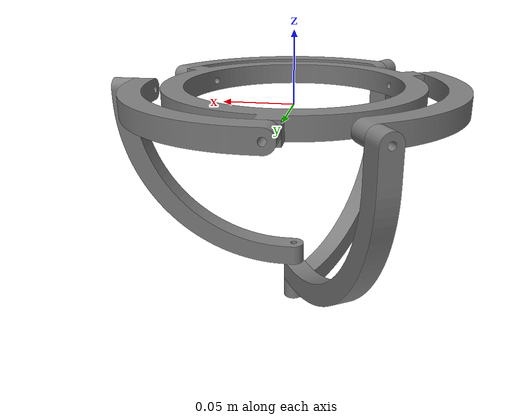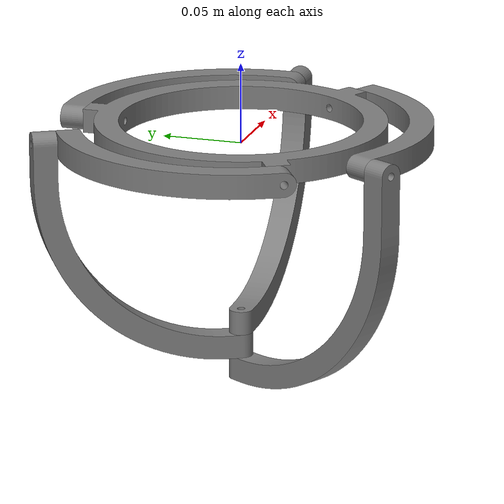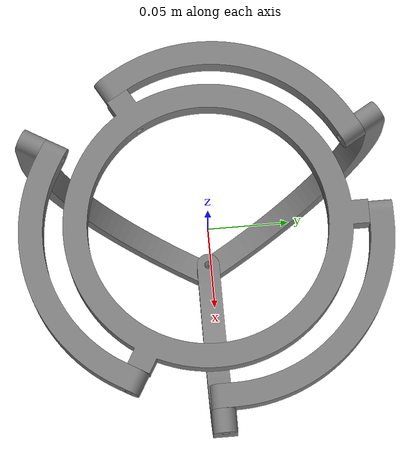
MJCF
<mujoco model="parallel_spherical">
  <compiler angle="radian" meshdir="meshes/"/>
  <asset>
    <mesh name="base_link" file="base_link.stl" scale="0.001 0.001 0.001"/>
    <mesh name="upper_link11" file="upper_link11.stl" scale="0.001 0.001 0.001"/>
    <mesh name="upper_link21" file="upper_link21.stl" scale="0.001 0.001 0.001"/>
    <mesh name="upper_link31" file="upper_link31.stl" scale="0.001 0.001 0.001"/>
    <mesh name="lower_link11" file="lower_link11.stl" scale="0.001 0.001 0.001"/>
    <mesh name="lower_link21" file="lower_link21.stl" scale="0.001 0.001 0.001"/>
    <mesh name="lower_link31" file="lower_link31.stl" scale="0.001 0.001 0.001"/>
  </asset>
  <worldbody>
    <body name="base_link">
      <inertial pos="0 0 0.0075" quat="0.5 0.5 -0.5 0.5" mass="0.957533" diaginertia="0.006678 0.00335715 0.00335715"/>
      <geom type="mesh" contype="0" conaffinity="0" group="1" density="0" mesh="base_link"/>
      <geom type="mesh" mesh="base_link"/>
      <body name="upper_link11" pos="0 0.1 0.0075">
        <inertial pos="0.0689958 -0.0310042 0" quat="0.270598 0.653281 -0.270598 0.653281" mass="0.320119" diaginertia="0.00079907 0.00075673 5.4308e-05"/>
        <joint name="base-1" pos="0 0 0" axis="0 -1 0"/>
        <geom pos="0 -0.1 -0.0075" type="mesh" contype="0" conaffinity="0" group="1" density="0" mesh="upper_link11"/>
        <geom pos="0 -0.1 -0.0075" type="mesh" mesh="upper_link11"/>
        <body name="lower_link11" pos="0.115 -0.1 0">
          <inertial pos="-0.0364475 0 -0.0785525" quat="0.653281 0.270598 0.270598 0.653281" mass="0.361736" diaginertia="0.00115297 0.00109362 7.28718e-05"/>
          <joint name="1-1" pos="0 0 0" axis="-1 0 0"/>
          <geom pos="-0.115 0 -0.0075" type="mesh" contype="0" conaffinity="0" group="1" density="0" mesh="lower_link11"/>
          <geom pos="-0.115 0 -0.0075" type="mesh" mesh="lower_link11"/>
        </body>
      </body>
      <body name="upper_link21" pos="-0.086603 -0.05 0.0075">
        <inertial pos="-0.00764695 0.0752542 0" quat="0.560986 0.430459 -0.560986 0.430459" mass="0.320119" diaginertia="0.00079907 0.00075673 5.4308e-05"/>
        <joint name="base-2" pos="0 0 0" axis="0.866025 0.5 0"/>
        <geom pos="0.086603 0.05 -0.0075" type="mesh" contype="0" conaffinity="0" group="1" density="0" mesh="upper_link21"/>
        <geom pos="0.086603 0.05 -0.0075" type="mesh" mesh="upper_link21"/>
        <body name="lower_link21" pos="0.029103 0.149593 0">
          <inertial pos="0.0167242 -0.0289673 -0.0873674" quat="0.90369 -0.341111 -0.0914004 0.242143" mass="0.38823" diaginertia="0.00140486 0.00132334 9.60388e-05"/>
          <joint name="2-2" pos="0 0 0" axis="0.5 -0.866025 0"/>
          <geom pos="0.0575 -0.099593 -0.0075" type="mesh" contype="0" conaffinity="0" group="1" density="0" mesh="lower_link21"/>
          <geom pos="0.0575 -0.099593 -0.0075" type="mesh" mesh="lower_link21"/>
        </body>
      </body>
      <body name="upper_link31" pos="0.086603 -0.05 0.0075">
        <inertial pos="-0.0613488 -0.04425 0" quat="-0.0922958 0.701057 0.0922958 0.701057" mass="0.320119" diaginertia="0.00079907 0.00075673 5.4308e-05"/>
        <joint name="base-3" pos="0 0 0" axis="-0.866025 0.5 0"/>
        <geom pos="-0.086603 0.05 -0.0075" type="mesh" contype="0" conaffinity="0" group="1" density="0" mesh="upper_link31"/>
        <geom pos="-0.086603 0.05 -0.0075" type="mesh" mesh="upper_link31"/>
        <body name="lower_link31" pos="-0.144103 -0.049593 0">
          <inertial pos="0.0154163 0.0267018 -0.0960143" quat="0.913602 0.313599 -0.0840287 -0.244799" mass="0.414723" diaginertia="0.00169316 0.00158647 0.000122206"/>
          <joint name="3-3" pos="0 0 0" axis="0.5 0.866025 0"/>
          <geom pos="0.0575 0.099593 -0.0075" type="mesh" contype="0" conaffinity="0" group="1" density="0" mesh="lower_link31"/>
          <geom pos="0.0575 0.099593 -0.0075" type="mesh" mesh="lower_link31"/>
        </body>
      </body>
    </body>
  </worldbody>
  <equality>
    <connect name="kinematic_link1" active="true" body1="lower_link11" body2="lower_link21" anchor="0 0 0" />
    <connect name="kinematic_link2" active="true" body1="lower_link21" body2="lower_link31" anchor="0 0 0" />
  </equality>
</mujoco>
